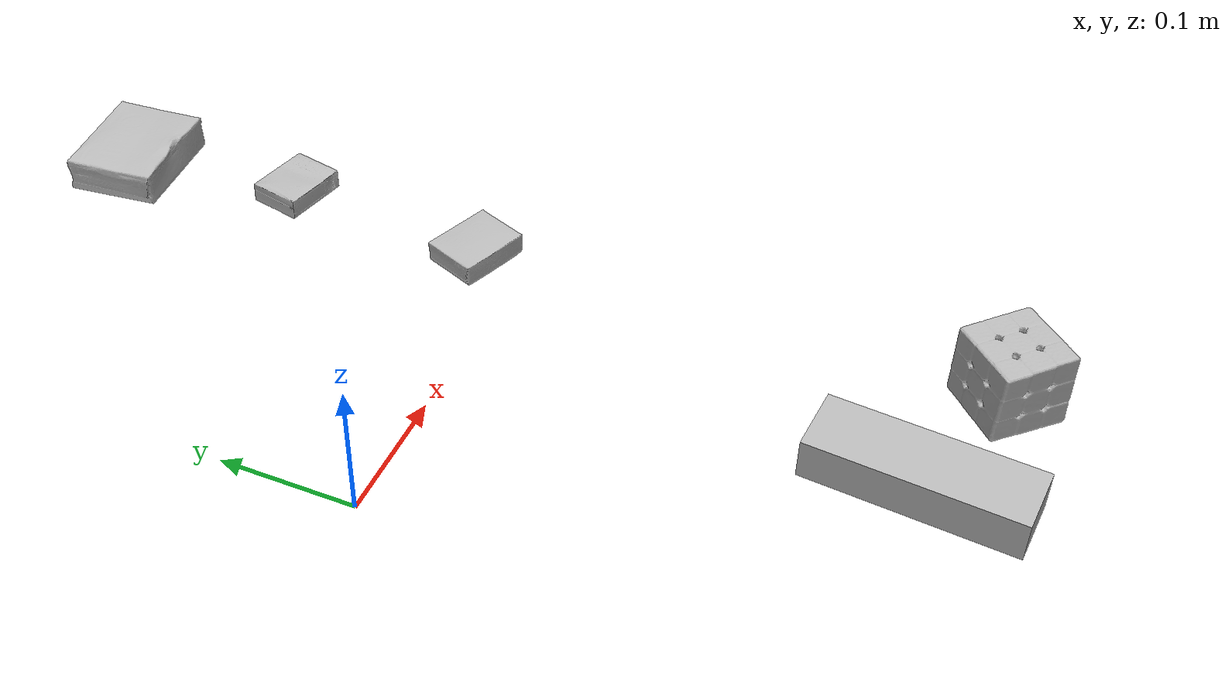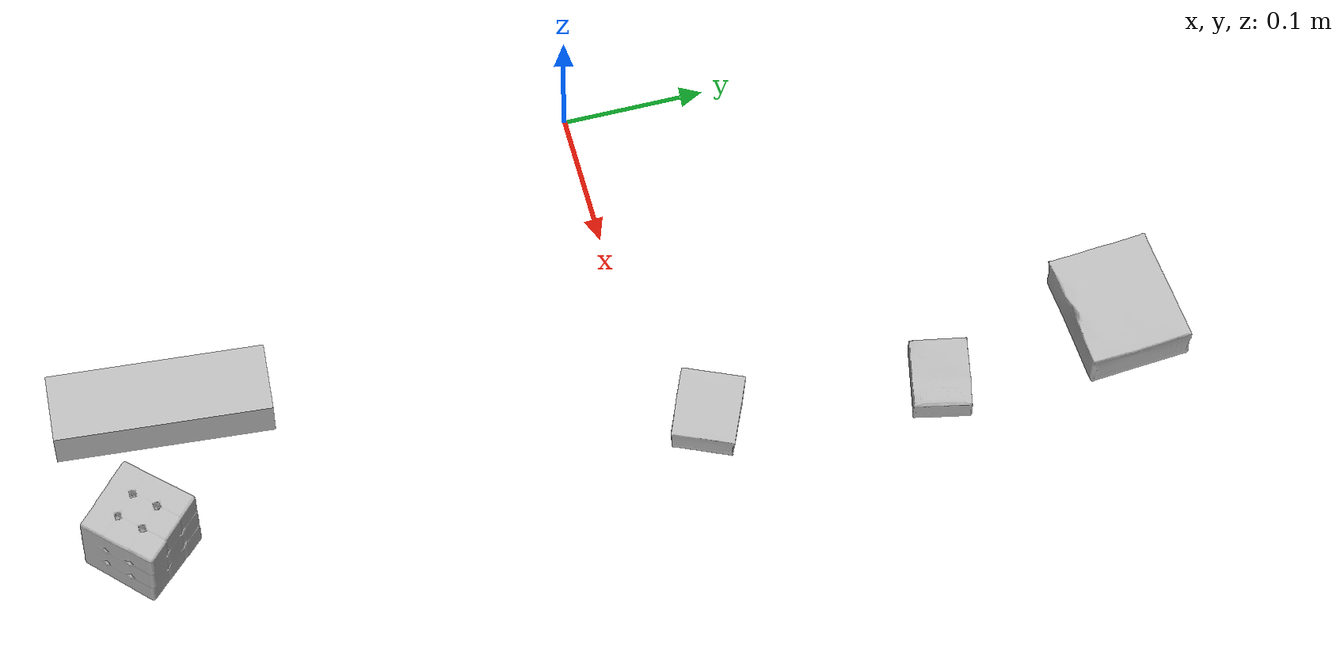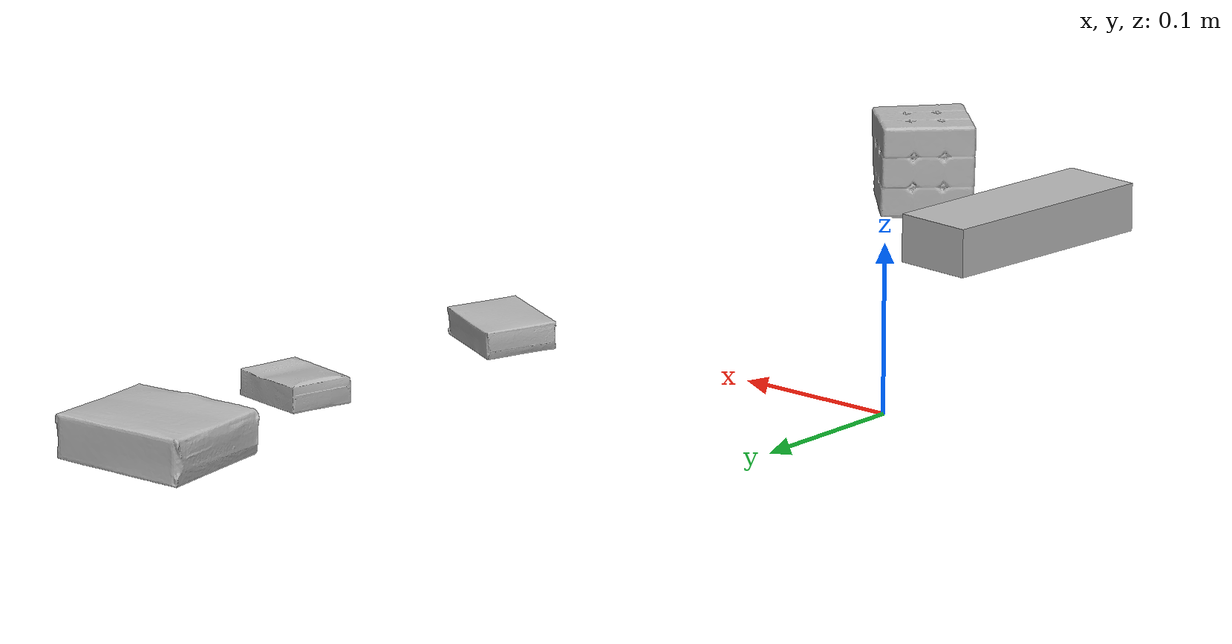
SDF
<sdf version="1.4">
  <world name="default">
    <light name="light1" type="point">
      <pose>0 0 1 0 0 0</pose>
      <diffuse>3 3 3 1</diffuse>
      <specular>3 3 3 1</specular>
    </light>
    <light name="light2" type="point">
      <pose>0 0.5 2 0 0 0</pose>
      <diffuse>1 1 1 1</diffuse>
      <specular>1 1 1 1</specular>
    </light>
    <light name="light3" type="point">
      <pose>0 0.5 2 0 0 0</pose>
      <diffuse>3 3 3 1</diffuse>
      <specular>3 3 3 1</specular>
    </light>
    <scene>
      <ambient>0.7 0.7 0.7</ambient>
    </scene>
    <model name="box1">
      <link name="link_box1">
        <collision name="default">
          <geometry>
            <mesh>
              <uri>model://jenga/collision_meshes/collision.obj</uri>
              <scale>1.0 1.0 1.0</scale>
            </mesh>
          </geometry>
          <surface>
            <friction>
              <ode>
                <mu>0.5</mu>
                <mu2>0.5</mu2>
              </ode>
            </friction>
          <contact>
        <ode>
            <max_vel>0</max_vel>
            <min_depth>0.0001</min_depth>
            <kp>1e8</kp>
        </ode>
    </contact></surface>
        </collision>
        <visual name="default">
          <geometry>
            <mesh>
              <uri>model://jenga/visual_meshes/visual.dae</uri>
              <scale>1.0 1.0 1.0</scale>
            </mesh>
          </geometry>
        </visual>
        <inertial>
          <mass>0.2062758058309555</mass>
          <pose>-2.502855807051674e-07 -0.00010250010382151231 -4.092339804628864e-05 0.0 -7.342154049184251e-07 0.0</pose>
          <inertia>
            <ixx>5.7081514e-05</ixx>
            <iyy>0.0003867828</iyy>
            <izz>0.00041292355</izz>
            <ixy>0</ixy>
            <ixz>0</ixz>
            <iyz>0</iyz>
          </inertia>
        </inertial>
      </link>
      <pose>0.1592351645231247 -0.3243890404701233 0.014999995008111 6.3148216133311836e-09 -2.886937259706507e-10 1.4892812981329513</pose>
    </model>
    <model name="box2">
      <link name="link_box2">
        <collision name="default">
          <geometry>
            <mesh>
              <uri>model://cracker_box/collision_meshes/collision.obj</uri>
              <scale>0.25 0.25 0.25</scale>
            </mesh>
          </geometry>
          <surface>
            <friction>
              <ode>
                <mu>0.5</mu>
                <mu2>0.5</mu2>
              </ode>
            </friction>
          <contact>
        <ode>
            <max_vel>0</max_vel>
            <min_depth>0.0001</min_depth>
            <kp>1e8</kp>
        </ode>
    </contact></surface>
        </collision>
        <visual name="default">
          <geometry>
            <mesh>
              <uri>model://cracker_box/visual_meshes/visual.dae</uri>
              <scale>0.25 0.25 0.25</scale>
            </mesh>
          </geometry>
        </visual>
        <inertial>
          <mass>0.023937078192830086</mass>
          <pose>0.00023660386796109378 6.358562677633017e-05 -0.00042573839891701937 -0.00031620780222672953 -0.011106490531565828 0.0025467947702904154</pose>
          <inertia>
            <ixx>3.8053279e-06</ixx>
            <iyy>6.2833433e-06</iyy>
            <izz>8.966907e-06</izz>
            <ixy>0</ixy>
            <ixz>0</ixz>
            <iyz>0</iyz>
          </inertia>
        </inertial>
      </link>
      <pose>0.2694132328033447 0.19729121029376984 0.009120452217757702 -0.011788063387932377 -0.007367246171513364 2.9311984876492887</pose>
    </model>
    <model name="box3">
      <link name="link_box3">
        <collision name="default">
          <geometry>
            <mesh>
              <uri>model://pudding_box/collision_meshes/collision.obj</uri>
              <scale>0.5 0.5 0.5</scale>
            </mesh>
          </geometry>
          <surface>
            <friction>
              <ode>
                <mu>0.5</mu>
                <mu2>0.5</mu2>
              </ode>
            </friction>
          <contact>
        <ode>
            <max_vel>0</max_vel>
            <min_depth>0.0001</min_depth>
            <kp>1e8</kp>
        </ode>
    </contact></surface>
        </collision>
        <visual name="default">
          <geometry>
            <mesh>
              <uri>model://pudding_box/visual_meshes/visual.dae</uri>
              <scale>0.5 0.5 0.5</scale>
            </mesh>
          </geometry>
        </visual>
        <inertial>
          <mass>0.06577561050653458</mass>
          <pose>0.0002447410661261529 0.00040339428232982755 -0.00025944135268218815 0.005213102261421096 -0.006603797796883786 0.020079827023418362</pose>
          <inertia>
            <ixx>1.8588986e-05</ixx>
            <iyy>1.2506803e-05</iyy>
            <izz>2.7451497e-05</izz>
            <ixy>0</ixy>
            <ixz>0</ixz>
            <iyz>0</iyz>
          </inertia>
        </inertial>
      </link>
      <pose>0.255928635597229 0.03633179888129234 0.009862901642918587 0.0223481972145886 -0.011391891041679685 -1.9731373372076049</pose>
    </model>
    <model name="box4">
      <link name="link_box4">
        <collision name="default">
          <geometry>
            <mesh>
              <uri>model://gelatin_box/collision_meshes/collision.obj</uri>
              <scale>1.0 1.0 1.0</scale>
            </mesh>
          </geometry>
          <surface>
            <friction>
              <ode>
                <mu>0.5</mu>
                <mu2>0.5</mu2>
              </ode>
            </friction>
          <contact>
        <ode>
            <max_vel>0</max_vel>
            <min_depth>0.0001</min_depth>
            <kp>1e8</kp>
        </ode>
    </contact></surface>
        </collision>
        <visual name="default">
          <geometry>
            <mesh>
              <uri>model://gelatin_box/visual_meshes/visual.dae</uri>
              <scale>1.0 1.0 1.0</scale>
            </mesh>
          </geometry>
        </visual>
        <inertial>
          <mass>0.21051041781902313</mass>
          <pose>0.000431961816502735 0.00011156871914863586 -0.0003640321083366871 -0.0010503719683328595 -0.0047558182256164224 0.016440557608480007</pose>
          <inertia>
            <ixx>0.0001486032</ixx>
            <iyy>0.00010614647</iyy>
            <izz>0.00022620716</izz>
            <ixy>0</ixy>
            <ixz>0</ixz>
            <iyz>0</iyz>
          </inertia>
        </inertial>
      </link>
      <pose>0.24936282634735107 0.33068278431892395 0.01516831386834383 0.005597416723938854 -0.007304515980858496 -1.4989337924848067</pose>
    </model>
    <model name="box5">
      <link name="link_box5">
        <collision name="default">
          <geometry>
            <mesh>
              <uri>model://rubiks_cube/collision_meshes/collision.obj</uri>
              <scale>1.0 1.0 1.0</scale>
            </mesh>
          </geometry>
          <surface>
            <friction>
              <ode>
                <mu>0.5</mu>
                <mu2>0.5</mu2>
              </ode>
            </friction>
          <contact>
        <ode>
            <max_vel>0</max_vel>
            <min_depth>0.0001</min_depth>
            <kp>1e8</kp>
        </ode>
    </contact></surface>
        </collision>
        <visual name="default">
          <geometry>
            <mesh>
              <uri>model://rubiks_cube/visual_meshes/visual.dae</uri>
              <scale>1.0 1.0 1.0</scale>
            </mesh>
          </geometry>
        </visual>
        <inertial>
          <mass>0.13810032606124878</mass>
          <pose>2.6721041649580002e-05 5.256967051536776e-05 -7.264316082000732e-06 -0.05467240103362065 -0.09813937396878175 -0.03445717948301123</pose>
          <inertia>
            <ixx>7.63097e-05</ixx>
            <iyy>7.595384e-05</iyy>
            <izz>7.694205e-05</izz>
            <ixy>0</ixy>
            <ixz>0</ixz>
            <iyz>0</iyz>
          </inertia>
        </inertial>
      </link>
      <pose>0.25942811369895935 -0.35792627930641174 0.028678981587290764 -3.5259082324476093e-06 -1.029798031701947e-06 2.370083740062959</pose>
    </model>
  <physics type="ode">
      <max_contacts>50</max_contacts>
      <ode>
        <solver>
          <type>quick</type>
          <iters>75</iters>
        </solver>
        <constraints>
          <contact_max_correcting_vel>0</contact_max_correcting_vel>
          <contact_surface_layer>0</contact_surface_layer>
        </constraints>
      </ode>
    </physics></world>
</sdf>
